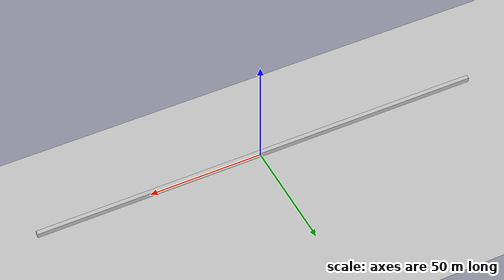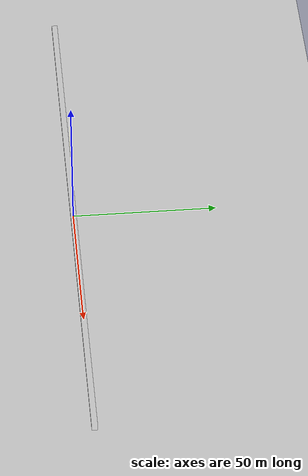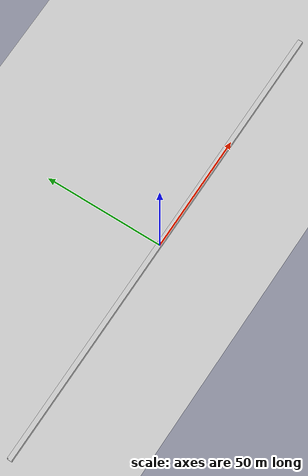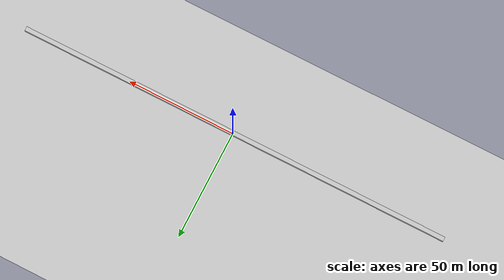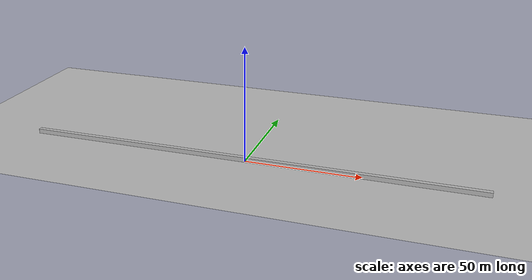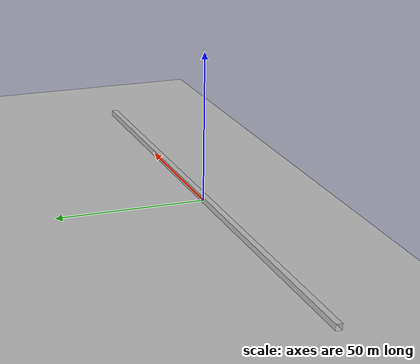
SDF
<?xml version="1.0" ?>
<sdf version="1.4">
  <world name="default">
    <scene>
      <ambient>0.5 0.5 0.5 1</ambient>
      <background>0.5 0.5 0.5 1</background>
      <shadows>false</shadows>
    </scene>

    <light type="point" name="my_light">
      <pose>0 0 30 0 0 0</pose>
      <diffuse>.8 .8 .8 1</diffuse>
      <specular>.1 .1 .1 1</specular>
      <attenuation>
        <range>200</range>
        <linear>0.02</linear>
        <constant>0.1</constant>
        <quadratic>0.0</quadratic>
      </attenuation>
      <direction>0 0 -1</direction>
      <cast_shadows>false</cast_shadows>
    </light>

    <gui>
      <camera name="user_camera">
          <pose>0.0 0.0 30.0 0.0 1.57 0.0</pose>
      </camera>
    </gui>

    <!-- Ground Plane -->
    <model name="plane1_model">
      <static>true</static>
      <link name="body">
        <pose>0 0 -0.1 0 0 0</pose>
        <collision name="geom_1">
          <geometry>
            <plane>
              <normal>0 0 1</normal>
            </plane>
          </geometry>
        </collision>

        <visual name="visual_1">
          <geometry>
            <plane>
              <normal>0 0 1</normal>
              <size>100 100</size>
            </plane>
          </geometry>
          <material>
            <script>Gazebo/Grey</script>
          </material>
          <cast_shadows>false</cast_shadows>
        </visual>
      </link>
    </model>

    <!-- MAP -->
    <include>
      <uri>model://rmcl_corridor</uri>
    </include>

  </world>
</sdf>

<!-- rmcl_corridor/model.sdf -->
<sdf version="1.6">
<model name="rmcl_corridor">
  <static>true</static>
  <link name="link">
    <collision name="collision">
      <geometry>
        <mesh>
          <scale>1 1 1</scale>
          <uri>model://rmcl_corridor/meshes/corridor.dae</uri>
        </mesh>
      </geometry>
    </collision>
    <visual name="visual">
      <geometry>
        <mesh>
          <scale>1 1 1</scale>
          <uri>model://rmcl_corridor/meshes/corridor.dae</uri>
        </mesh>
      </geometry>
    </visual>
  </link>
</model>
</sdf>
